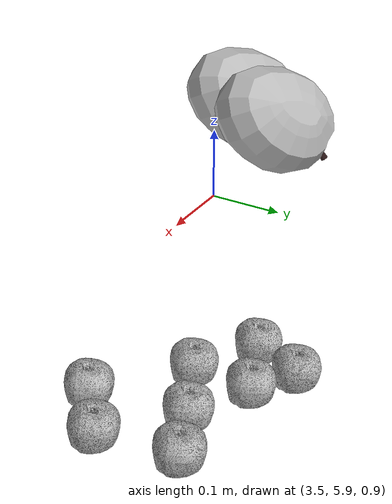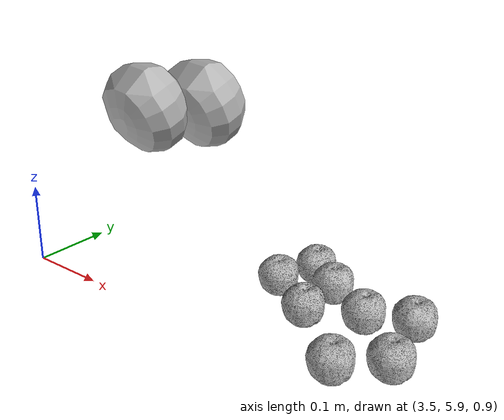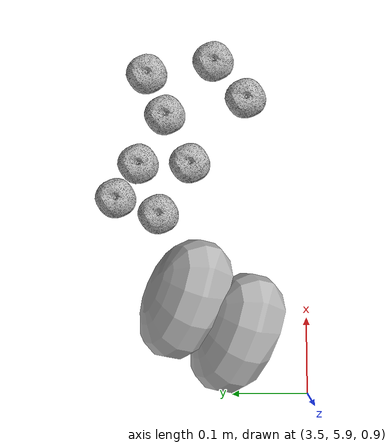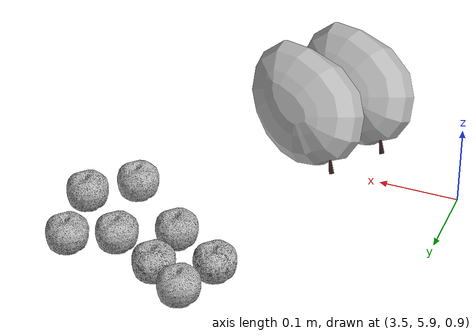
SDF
<sdf version="1.6">
 <world name="default">
  <model name="apple_clone_9">
   <link name="link_0">
    <inertial>
     <mass>1</mass>
     <inertia>
      <ixx>0.166667</ixx>
      <ixy>0</ixy>
      <ixz>0</ixz>
      <iyy>0.166667</iyy>
      <iyz>0</iyz>
      <izz>0.166667</izz>
     </inertia>
    </inertial>
    <visual name="visual">
     <geometry><mesh><uri>model://apple/meshes/apple.dae</uri><scale>1 1 1</scale></mesh></geometry>
    </visual>
    <collision name="collision">
     <geometry><mesh><uri>model://apple/meshes/apple.dae</uri><scale>1 1 1</scale></mesh></geometry>
     <surface>
      <friction>
       <ode><mu>1</mu><mu2>1</mu2><fdir1>0 0 0</fdir1><slip1>0</slip1><slip2>0</slip2></ode>
       <torsional>
        <coefficient>1</coefficient>
        <patch_radius>0</patch_radius>
        <surface_radius>0</surface_radius>
        <use_patch_radius>1</use_patch_radius>
        <ode><slip>0</slip></ode>
       </torsional>
      </friction>
      <bounce><restitution_coefficient>0</restitution_coefficient><threshold>1e+06</threshold></bounce>
      <contact>
       <collide_without_contact>0</collide_without_contact>
       <collide_without_contact_bitmask>1</collide_without_contact_bitmask>
       <collide_bitmask>1</collide_bitmask>
       <ode>
        <soft_cfm>0</soft_cfm>
        <soft_erp>0.2</soft_erp>
        <kp>1e+13</kp>
        <kd>1</kd>
        <max_vel>0.01</max_vel>
        <min_depth>0</min_depth>
       </ode>
       <bullet>
        <split_impulse>1</split_impulse>
        <split_impulse_penetration_threshold>-0.01</split_impulse_penetration_threshold>
        <soft_cfm>0</soft_cfm>
        <soft_erp>0.2</soft_erp>
        <kp>1e+13</kp>
        <kd>1</kd>
       </bullet>
      </contact>
     </surface>
    </collision>
   </link>
   <static>1</static>
   <pose>3.88628 5.97373 0.862702 0 -0 0</pose>
  </model>
  <model name="apple_clone_10">
   <link name="link_0">
    <inertial>
     <mass>1</mass>
     <inertia>
      <ixx>0.166667</ixx>
      <ixy>0</ixy>
      <ixz>0</ixz>
      <iyy>0.166667</iyy>
      <iyz>0</iyz>
      <izz>0.166667</izz>
     </inertia>
    </inertial>
    <visual name="visual">
     <geometry><mesh><uri>model://apple/meshes/apple.dae</uri><scale>1 1 1</scale></mesh></geometry>
    </visual>
    <collision name="collision">
     <geometry><mesh><uri>model://apple/meshes/apple.dae</uri><scale>1 1 1</scale></mesh></geometry>
     <surface>
      <friction>
       <ode><mu>1</mu><mu2>1</mu2><fdir1>0 0 0</fdir1><slip1>0</slip1><slip2>0</slip2></ode>
       <torsional>
        <coefficient>1</coefficient>
        <patch_radius>0</patch_radius>
        <surface_radius>0</surface_radius>
        <use_patch_radius>1</use_patch_radius>
        <ode><slip>0</slip></ode>
       </torsional>
      </friction>
      <bounce><restitution_coefficient>0</restitution_coefficient><threshold>1e+06</threshold></bounce>
      <contact>
       <collide_without_contact>0</collide_without_contact>
       <collide_without_contact_bitmask>1</collide_without_contact_bitmask>
       <collide_bitmask>1</collide_bitmask>
       <ode>
        <soft_cfm>0</soft_cfm>
        <soft_erp>0.2</soft_erp>
        <kp>1e+13</kp>
        <kd>1</kd>
        <max_vel>0.01</max_vel>
        <min_depth>0</min_depth>
       </ode>
       <bullet>
        <split_impulse>1</split_impulse>
        <split_impulse_penetration_threshold>-0.01</split_impulse_penetration_threshold>
        <soft_cfm>0</soft_cfm>
        <soft_erp>0.2</soft_erp>
        <kp>1e+13</kp>
        <kd>1</kd>
       </bullet>
      </contact>
     </surface>
    </collision>
   </link>
   <static>1</static>
   <pose>3.93648 6.01681 0.862702 0 -0 0</pose>
  </model>
  <model name="apple_clone_12">
   <link name="link_0">
    <inertial>
     <mass>1</mass>
     <inertia>
      <ixx>0.166667</ixx>
      <ixy>0</ixy>
      <ixz>0</ixz>
      <iyy>0.166667</iyy>
      <iyz>0</iyz>
      <izz>0.166667</izz>
     </inertia>
    </inertial>
    <visual name="visual">
     <geometry><mesh><uri>model://apple/meshes/apple.dae</uri><scale>1 1 1</scale></mesh></geometry>
    </visual>
    <collision name="collision">
     <geometry><mesh><uri>model://apple/meshes/apple.dae</uri><scale>1 1 1</scale></mesh></geometry>
     <surface>
      <friction>
       <ode><mu>1</mu><mu2>1</mu2><fdir1>0 0 0</fdir1><slip1>0</slip1><slip2>0</slip2></ode>
       <torsional>
        <coefficient>1</coefficient>
        <patch_radius>0</patch_radius>
        <surface_radius>0</surface_radius>
        <use_patch_radius>1</use_patch_radius>
        <ode><slip>0</slip></ode>
       </torsional>
      </friction>
      <bounce><restitution_coefficient>0</restitution_coefficient><threshold>1e+06</threshold></bounce>
      <contact>
       <collide_without_contact>0</collide_without_contact>
       <collide_without_contact_bitmask>1</collide_without_contact_bitmask>
       <collide_bitmask>1</collide_bitmask>
       <ode>
        <soft_cfm>0</soft_cfm>
        <soft_erp>0.2</soft_erp>
        <kp>1e+13</kp>
        <kd>1</kd>
        <max_vel>0.01</max_vel>
        <min_depth>0</min_depth>
       </ode>
       <bullet>
        <split_impulse>1</split_impulse>
        <split_impulse_penetration_threshold>-0.01</split_impulse_penetration_threshold>
        <soft_cfm>0</soft_cfm>
        <soft_erp>0.2</soft_erp>
        <kp>1e+13</kp>
        <kd>1</kd>
       </bullet>
      </contact>
     </surface>
    </collision>
   </link>
   <static>1</static>
   <pose>3.79974 6.05028 0.862702 0 -0 0</pose>
  </model>
  <model name="apple_clone_13">
   <link name="link_0">
    <inertial>
     <mass>1</mass>
     <inertia>
      <ixx>0.166667</ixx>
      <ixy>0</ixy>
      <ixz>0</ixz>
      <iyy>0.166667</iyy>
      <iyz>0</iyz>
      <izz>0.166667</izz>
     </inertia>
    </inertial>
    <visual name="visual">
     <geometry><mesh><uri>model://apple/meshes/apple.dae</uri><scale>1 1 1</scale></mesh></geometry>
    </visual>
    <collision name="collision">
     <geometry><mesh><uri>model://apple/meshes/apple.dae</uri><scale>1 1 1</scale></mesh></geometry>
     <surface>
      <friction>
       <ode><mu>1</mu><mu2>1</mu2><fdir1>0 0 0</fdir1><slip1>0</slip1><slip2>0</slip2></ode>
       <torsional>
        <coefficient>1</coefficient>
        <patch_radius>0</patch_radius>
        <surface_radius>0</surface_radius>
        <use_patch_radius>1</use_patch_radius>
        <ode><slip>0</slip></ode>
       </torsional>
      </friction>
      <bounce><restitution_coefficient>0</restitution_coefficient><threshold>1e+06</threshold></bounce>
      <contact>
       <collide_without_contact>0</collide_without_contact>
       <collide_without_contact_bitmask>1</collide_without_contact_bitmask>
       <collide_bitmask>1</collide_bitmask>
       <ode>
        <soft_cfm>0</soft_cfm>
        <soft_erp>0.2</soft_erp>
        <kp>1e+13</kp>
        <kd>1</kd>
        <max_vel>0.01</max_vel>
        <min_depth>0</min_depth>
       </ode>
       <bullet>
        <split_impulse>1</split_impulse>
        <split_impulse_penetration_threshold>-0.01</split_impulse_penetration_threshold>
        <soft_cfm>0</soft_cfm>
        <soft_erp>0.2</soft_erp>
        <kp>1e+13</kp>
        <kd>1</kd>
       </bullet>
      </contact>
     </surface>
    </collision>
   </link>
   <static>1</static>
   <pose>3.86522 6.08288 0.862702 0 -0 0</pose>
  </model>
  <model name="apple_clone_14">
   <link name="link_0">
    <inertial>
     <mass>1</mass>
     <inertia>
      <ixx>0.166667</ixx>
      <ixy>0</ixy>
      <ixz>0</ixz>
      <iyy>0.166667</iyy>
      <iyz>0</iyz>
      <izz>0.166667</izz>
     </inertia>
    </inertial>
    <visual name="visual">
     <geometry><mesh><uri>model://apple/meshes/apple.dae</uri><scale>1 1 1</scale></mesh></geometry>
    </visual>
    <collision name="collision">
     <geometry><mesh><uri>model://apple/meshes/apple.dae</uri><scale>1 1 1</scale></mesh></geometry>
     <surface>
      <friction>
       <ode><mu>1</mu><mu2>1</mu2><fdir1>0 0 0</fdir1><slip1>0</slip1><slip2>0</slip2></ode>
       <torsional>
        <coefficient>1</coefficient>
        <patch_radius>0</patch_radius>
        <surface_radius>0</surface_radius>
        <use_patch_radius>1</use_patch_radius>
        <ode><slip>0</slip></ode>
       </torsional>
      </friction>
      <bounce><restitution_coefficient>0</restitution_coefficient><threshold>1e+06</threshold></bounce>
      <contact>
       <collide_without_contact>0</collide_without_contact>
       <collide_without_contact_bitmask>1</collide_without_contact_bitmask>
       <collide_bitmask>1</collide_bitmask>
       <ode>
        <soft_cfm>0</soft_cfm>
        <soft_erp>0.2</soft_erp>
        <kp>1e+13</kp>
        <kd>1</kd>
        <max_vel>0.01</max_vel>
        <min_depth>0</min_depth>
       </ode>
       <bullet>
        <split_impulse>1</split_impulse>
        <split_impulse_penetration_threshold>-0.01</split_impulse_penetration_threshold>
        <soft_cfm>0</soft_cfm>
        <soft_erp>0.2</soft_erp>
        <kp>1e+13</kp>
        <kd>1</kd>
       </bullet>
      </contact>
     </surface>
    </collision>
   </link>
   <static>1</static>
   <pose>3.92071 6.10668 0.862702 0 -0 0</pose>
  </model>
  <model name="apple_clone_18">
   <link name="link_0">
    <inertial>
     <mass>1</mass>
     <inertia>
      <ixx>0.166667</ixx>
      <ixy>0</ixy>
      <ixz>0</ixz>
      <iyy>0.166667</iyy>
      <iyz>0</iyz>
      <izz>0.166667</izz>
     </inertia>
    </inertial>
    <visual name="visual">
     <geometry><mesh><uri>model://apple/meshes/apple.dae</uri><scale>1 1 1</scale></mesh></geometry>
    </visual>
    <collision name="collision">
     <geometry><mesh><uri>model://apple/meshes/apple.dae</uri><scale>1 1 1</scale></mesh></geometry>
     <surface>
      <friction>
       <ode><mu>1</mu><mu2>1</mu2><fdir1>0 0 0</fdir1><slip1>0</slip1><slip2>0</slip2></ode>
       <torsional>
        <coefficient>1</coefficient>
        <patch_radius>0</patch_radius>
        <surface_radius>0</surface_radius>
        <use_patch_radius>1</use_patch_radius>
        <ode><slip>0</slip></ode>
       </torsional>
      </friction>
      <bounce><restitution_coefficient>0</restitution_coefficient><threshold>1e+06</threshold></bounce>
      <contact>
       <collide_without_contact>0</collide_without_contact>
       <collide_without_contact_bitmask>1</collide_without_contact_bitmask>
       <collide_bitmask>1</collide_bitmask>
       <ode>
        <soft_cfm>0</soft_cfm>
        <soft_erp>0.2</soft_erp>
        <kp>1e+13</kp>
        <kd>1</kd>
        <max_vel>0.01</max_vel>
        <min_depth>0</min_depth>
       </ode>
       <bullet>
        <split_impulse>1</split_impulse>
        <split_impulse_penetration_threshold>-0.01</split_impulse_penetration_threshold>
        <soft_cfm>0</soft_cfm>
        <soft_erp>0.2</soft_erp>
        <kp>1e+13</kp>
        <kd>1</kd>
       </bullet>
      </contact>
     </surface>
    </collision>
   </link>
   <static>1</static>
   <pose>3.79968 6.11984 0.862702 0 -0 0</pose>
  </model>
  <model name="apple_clone_19">
   <link name="link_0">
    <inertial>
     <mass>1</mass>
     <inertia>
      <ixx>0.166667</ixx>
      <ixy>0</ixy>
      <ixz>0</ixz>
      <iyy>0.166667</iyy>
      <iyz>0</iyz>
      <izz>0.166667</izz>
     </inertia>
    </inertial>
    <visual name="visual">
     <geometry><mesh><uri>model://apple/meshes/apple.dae</uri><scale>1 1 1</scale></mesh></geometry>
    </visual>
    <collision name="collision">
     <geometry><mesh><uri>model://apple/meshes/apple.dae</uri><scale>1 1 1</scale></mesh></geometry>
     <surface>
      <friction>
       <ode><mu>1</mu><mu2>1</mu2><fdir1>0 0 0</fdir1><slip1>0</slip1><slip2>0</slip2></ode>
       <torsional>
        <coefficient>1</coefficient>
        <patch_radius>0</patch_radius>
        <surface_radius>0</surface_radius>
        <use_patch_radius>1</use_patch_radius>
        <ode><slip>0</slip></ode>
       </torsional>
      </friction>
      <bounce><restitution_coefficient>0</restitution_coefficient><threshold>1e+06</threshold></bounce>
      <contact>
       <collide_without_contact>0</collide_without_contact>
       <collide_without_contact_bitmask>1</collide_without_contact_bitmask>
       <collide_bitmask>1</collide_bitmask>
       <ode>
        <soft_cfm>0</soft_cfm>
        <soft_erp>0.2</soft_erp>
        <kp>1e+13</kp>
        <kd>1</kd>
        <max_vel>0.01</max_vel>
        <min_depth>0</min_depth>
       </ode>
       <bullet>
        <split_impulse>1</split_impulse>
        <split_impulse_penetration_threshold>-0.01</split_impulse_penetration_threshold>
        <soft_cfm>0</soft_cfm>
        <soft_erp>0.2</soft_erp>
        <kp>1e+13</kp>
        <kd>1</kd>
       </bullet>
      </contact>
     </surface>
    </collision>
   </link>
   <static>1</static>
   <pose>3.75384 6.15071 0.862702 0 -0 0</pose>
  </model>
  <model name="apple_clone_20">
   <link name="link_0">
    <inertial>
     <mass>1</mass>
     <inertia>
      <ixx>0.166667</ixx>
      <ixy>0</ixy>
      <ixz>0</ixz>
      <iyy>0.166667</iyy>
      <iyz>0</iyz>
      <izz>0.166667</izz>
     </inertia>
    </inertial>
    <visual name="visual">
     <geometry><mesh><uri>model://apple/meshes/apple.dae</uri><scale>1 1 1</scale></mesh></geometry>
    </visual>
    <collision name="collision">
     <geometry><mesh><uri>model://apple/meshes/apple.dae</uri><scale>1 1 1</scale></mesh></geometry>
     <surface>
      <friction>
       <ode><mu>1</mu><mu2>1</mu2><fdir1>0 0 0</fdir1><slip1>0</slip1><slip2>0</slip2></ode>
       <torsional>
        <coefficient>1</coefficient>
        <patch_radius>0</patch_radius>
        <surface_radius>0</surface_radius>
        <use_patch_radius>1</use_patch_radius>
        <ode><slip>0</slip></ode>
       </torsional>
      </friction>
      <bounce><restitution_coefficient>0</restitution_coefficient><threshold>1e+06</threshold></bounce>
      <contact>
       <collide_without_contact>0</collide_without_contact>
       <collide_without_contact_bitmask>1</collide_without_contact_bitmask>
       <collide_bitmask>1</collide_bitmask>
       <ode>
        <soft_cfm>0</soft_cfm>
        <soft_erp>0.2</soft_erp>
        <kp>1e+13</kp>
        <kd>1</kd>
        <max_vel>0.01</max_vel>
        <min_depth>0</min_depth>
       </ode>
       <bullet>
        <split_impulse>1</split_impulse>
        <split_impulse_penetration_threshold>-0.01</split_impulse_penetration_threshold>
        <soft_cfm>0</soft_cfm>
        <soft_erp>0.2</soft_erp>
        <kp>1e+13</kp>
        <kd>1</kd>
       </bullet>
      </contact>
     </surface>
    </collision>
   </link>
   <static>1</static>
   <pose>3.73156 6.09344 0.862702 0 -0 0</pose>
  </model>
  <model name="mango_clone">
   <link name="link_0">
    <inertial>
     <mass>1</mass>
     <inertia>
      <ixx>0.166667</ixx>
      <ixy>0</ixy>
      <ixz>0</ixz>
      <iyy>0.166667</iyy>
      <iyz>0</iyz>
      <izz>0.166667</izz>
     </inertia>
    </inertial>
    <visual name="visual">
     <geometry><mesh><uri>model://mango/meshes/mango.dae</uri><scale>1 1 1</scale></mesh></geometry>
    </visual>
    <collision name="collision">
     <geometry><mesh><uri>model://mango/meshes/mango.dae</uri><scale>1 1 1</scale></mesh></geometry>
     <surface>
      <friction>
       <ode><mu>1</mu><mu2>1</mu2><fdir1>0 0 0</fdir1><slip1>0</slip1><slip2>0</slip2></ode>
       <torsional>
        <coefficient>1</coefficient>
        <patch_radius>0</patch_radius>
        <surface_radius>0</surface_radius>
        <use_patch_radius>1</use_patch_radius>
        <ode><slip>0</slip></ode>
       </torsional>
      </friction>
      <bounce><restitution_coefficient>0</restitution_coefficient><threshold>1e+06</threshold></bounce>
      <contact>
       <collide_without_contact>0</collide_without_contact>
       <collide_without_contact_bitmask>1</collide_without_contact_bitmask>
       <collide_bitmask>1</collide_bitmask>
       <ode>
        <soft_cfm>0</soft_cfm>
        <soft_erp>0.2</soft_erp>
        <kp>1e+13</kp>
        <kd>1</kd>
        <max_vel>0.01</max_vel>
        <min_depth>0</min_depth>
       </ode>
       <bullet>
        <split_impulse>1</split_impulse>
        <split_impulse_penetration_threshold>-0.01</split_impulse_penetration_threshold>
        <soft_cfm>0</soft_cfm>
        <soft_erp>0.2</soft_erp>
        <kp>1e+13</kp>
        <kd>1</kd>
       </bullet>
      </contact>
     </surface>
    </collision>
   </link>
   <static>1</static>
   <pose>3.61769 5.99735 1.08404 0 -0 0</pose>
  </model>
  <model name="mango_clone_0">
   <link name="link_0">
    <inertial>
     <mass>1</mass>
     <inertia>
      <ixx>0.166667</ixx>
      <ixy>0</ixy>
      <ixz>0</ixz>
      <iyy>0.166667</iyy>
      <iyz>0</iyz>
      <izz>0.166667</izz>
     </inertia>
    </inertial>
    <visual name="visual">
     <geometry><mesh><uri>model://mango/meshes/mango.dae</uri><scale>1 1 1</scale></mesh></geometry>
    </visual>
    <collision name="collision">
     <geometry><mesh><uri>model://mango/meshes/mango.dae</uri><scale>1 1 1</scale></mesh></geometry>
     <surface>
      <friction>
       <ode><mu>1</mu><mu2>1</mu2><fdir1>0 0 0</fdir1><slip1>0</slip1><slip2>0</slip2></ode>
       <torsional>
        <coefficient>1</coefficient>
        <patch_radius>0</patch_radius>
        <surface_radius>0</surface_radius>
        <use_patch_radius>1</use_patch_radius>
        <ode><slip>0</slip></ode>
       </torsional>
      </friction>
      <bounce><restitution_coefficient>0</restitution_coefficient><threshold>1e+06</threshold></bounce>
      <contact>
       <collide_without_contact>0</collide_without_contact>
       <collide_without_contact_bitmask>1</collide_without_contact_bitmask>
       <collide_bitmask>1</collide_bitmask>
       <ode>
        <soft_cfm>0</soft_cfm>
        <soft_erp>0.2</soft_erp>
        <kp>1e+13</kp>
        <kd>1</kd>
        <max_vel>0.01</max_vel>
        <min_depth>0</min_depth>
       </ode>
       <bullet>
        <split_impulse>1</split_impulse>
        <split_impulse_penetration_threshold>-0.01</split_impulse_penetration_threshold>
        <soft_cfm>0</soft_cfm>
        <soft_erp>0.2</soft_erp>
        <kp>1e+13</kp>
        <kd>1</kd>
       </bullet>
      </contact>
     </surface>
    </collision>
   </link>
   <static>1</static>
   <pose>3.65712 6.05613 1.08404 0 -0 0</pose>
  </model>
 </world>
</sdf>
